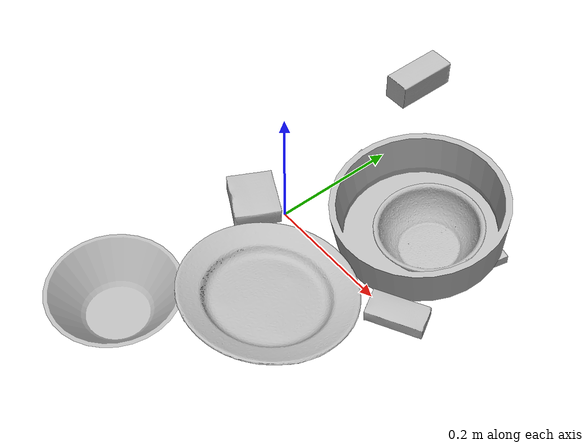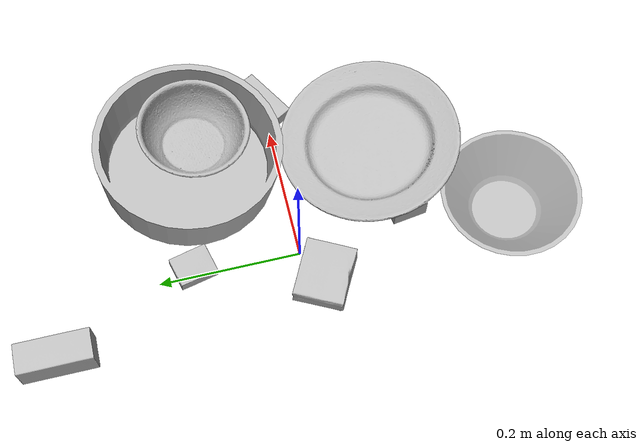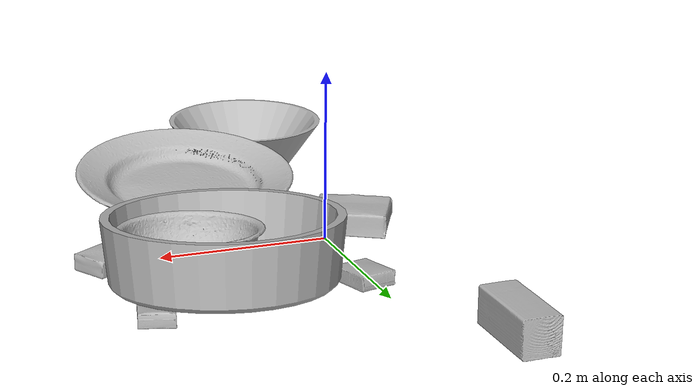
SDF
<sdf version="1.4">
  <world name="default">
    <light name="light1" type="point">
      <pose>0 0 1 0 0 0</pose>
      <diffuse>3 3 3 1</diffuse>
      <specular>3 3 3 1</specular>
    </light>
    <light name="light2" type="point">
      <pose>0 0.5 2 0 0 0</pose>
      <diffuse>1 1 1 1</diffuse>
      <specular>1 1 1 1</specular>
    </light>
    <light name="light3" type="point">
      <pose>0 0.5 2 0 0 0</pose>
      <diffuse>3 3 3 1</diffuse>
      <specular>3 3 3 1</specular>
    </light>
    <scene>
      <ambient>0.7 0.7 0.7</ambient>
    </scene>
    <model name="box1">
      <link name="link_box1">
        <collision name="default">
          <geometry>
            <mesh>
              <uri>model://jenga/collision_meshes/collision.obj</uri>
              <scale>1.0 1.0 1.0</scale>
            </mesh>
          </geometry>
          <surface>
            <friction>
              <ode>
                <mu>0.5</mu>
                <mu2>0.5</mu2>
              </ode>
            </friction>
          <contact>
        <ode>
            <max_vel>0</max_vel>
            <min_depth>0.0001</min_depth>
            <kp>1e8</kp>
        </ode>
    </contact></surface>
        </collision>
        <visual name="default">
          <geometry>
            <mesh>
              <uri>model://jenga/visual_meshes/visual.dae</uri>
              <scale>1.0 1.0 1.0</scale>
            </mesh>
          </geometry>
        </visual>
        <inertial>
          <mass>0.21843092143535614</mass>
          <pose>-2.502855807051674e-07 -0.00010250011109746993 -4.092339804628864e-05 0.0 -7.342154049184251e-07 0.0</pose>
          <inertia>
            <ixx>6.0445138e-05</ixx>
            <iyy>0.0004095746</iyy>
            <izz>0.00043725572</izz>
            <ixy>0</ixy>
            <ixz>0</ixz>
            <iyz>0</iyz>
          </inertia>
        </inertial>
      </link>
      <pose>0.09173869341611862 -0.15528805553913116 0.015000058338046074 7.238029517084074e-06 -5.20547038874497e-07 -2.993194590179922</pose>
    </model>
    <model name="box11">
      <link name="link_box11">
        <collision name="default">
          <geometry>
            <mesh>
              <uri>model://pudding_box/collision_meshes/collision.obj</uri>
              <scale>0.5 0.5 0.5</scale>
            </mesh>
          </geometry>
          <surface>
            <friction>
              <ode>
                <mu>0.5</mu>
                <mu2>0.5</mu2>
              </ode>
            </friction>
          <contact>
        <ode>
            <max_vel>0</max_vel>
            <min_depth>0.0001</min_depth>
            <kp>1e8</kp>
        </ode>
    </contact></surface>
        </collision>
        <visual name="default">
          <geometry>
            <mesh>
              <uri>model://pudding_box/visual_meshes/visual.dae</uri>
              <scale>0.5 0.5 0.5</scale>
            </mesh>
          </geometry>
        </visual>
        <inertial>
          <mass>0.04130476340651512</mass>
          <pose>0.00024474109522998333 0.00040339428232982755 -0.0002594413817860186 0.005213101341234124 -0.006603795469139562 0.020079830758209564</pose>
          <inertia>
            <ixx>1.1673226e-05</ixx>
            <iyy>7.85383e-06</iyy>
            <izz>1.723857e-05</izz>
            <ixy>0</ixy>
            <ixz>0</ixz>
            <iyz>0</iyz>
          </inertia>
        </inertial>
      </link>
      <pose>0.010555091314017773 0.14874719083309174 0.010024522431194782 0.038925397016447545 0.0016356724480770589 0.24808372217185104</pose>
    </model>
    <model name="box2">
      <link name="link_box2">
        <collision name="default">
          <geometry>
            <mesh>
              <uri>model://gelatin_box/collision_meshes/collision.obj</uri>
              <scale>1.0 1.0 1.0</scale>
            </mesh>
          </geometry>
          <surface>
            <friction>
              <ode>
                <mu>0.5</mu>
                <mu2>0.5</mu2>
              </ode>
            </friction>
          <contact>
        <ode>
            <max_vel>0</max_vel>
            <min_depth>0.0001</min_depth>
            <kp>1e8</kp>
        </ode>
    </contact></surface>
        </collision>
        <visual name="default">
          <geometry>
            <mesh>
              <uri>model://gelatin_box/visual_meshes/visual.dae</uri>
              <scale>1.0 1.0 1.0</scale>
            </mesh>
          </geometry>
        </visual>
        <inertial>
          <mass>0.24153950810432434</mass>
          <pose>0.0004319618456065655 0.00011156871914863586 -0.0003640321083366871 -0.001050371984258798 -0.004755819621622892 0.016440559472145032</pose>
          <inertia>
            <ixx>0.00017050719</ixx>
            <iyy>0.00012179239</iyy>
            <izz>0.0002595499</izz>
            <ixy>0</ixy>
            <ixz>0</ixz>
            <iyz>0</iyz>
          </inertia>
        </inertial>
      </link>
      <pose>-0.044366877526044846 -0.025486420840024948 0.015168310143053532 0.005597317561967432 -0.007304435181377776 -2.0619513504871216</pose>
    </model>
    <model name="box21">
      <link name="link_box21">
        <collision name="default">
          <geometry>
            <mesh>
              <uri>model://cracker_box/collision_meshes/collision.obj</uri>
              <scale>0.25 0.25 0.25</scale>
            </mesh>
          </geometry>
          <surface>
            <friction>
              <ode>
                <mu>0.5</mu>
                <mu2>0.5</mu2>
              </ode>
            </friction>
          <contact>
        <ode>
            <max_vel>0</max_vel>
            <min_depth>0.0001</min_depth>
            <kp>1e8</kp>
        </ode>
    </contact></surface>
        </collision>
        <visual name="default">
          <geometry>
            <mesh>
              <uri>model://cracker_box/visual_meshes/visual.dae</uri>
              <scale>0.25 0.25 0.25</scale>
            </mesh>
          </geometry>
        </visual>
        <inertial>
          <mass>0.04855586588382721</mass>
          <pose>0.00023660322767682374 6.358561222441494e-05 -0.00042573834070935845 -0.00031620783521113603 -0.01110649053142329 0.0025467954689779603</pose>
          <inertia>
            <ixx>7.719027e-06</ixx>
            <iyy>1.2745631e-05</iyy>
            <izz>1.8189185e-05</izz>
            <ixy>0</ixy>
            <ixz>0</ixz>
            <iyz>0</iyz>
          </inertia>
        </inertial>
      </link>
      <pose>0.2537783086299896 0.17563672363758087 0.009180080145597458 -0.005883490498149103 -0.01255919542104625 1.3164755729987756</pose>
    </model>
    <model name="box3">
      <link name="link_box3">
        <collision name="default">
          <geometry>
            <mesh>
              <uri>model://wood_block/collision_meshes/collision.obj</uri>
              <scale>0.5 0.5 0.5</scale>
            </mesh>
          </geometry>
          <surface>
            <friction>
              <ode>
                <mu>0.5</mu>
                <mu2>0.5</mu2>
              </ode>
            </friction>
          <contact>
        <ode>
            <max_vel>0</max_vel>
            <min_depth>0.0001</min_depth>
            <kp>1e8</kp>
        </ode>
    </contact></surface>
        </collision>
        <visual name="default">
          <geometry>
            <mesh>
              <uri>model://wood_block/visual_meshes/visual.dae</uri>
              <scale>0.5 0.5 0.5</scale>
            </mesh>
          </geometry>
        </visual>
        <inertial>
          <mass>0.17342756688594818</mass>
          <pose>-2.906657982748584e-06 -0.000285404734313488 0.00013204291462898254 -0.052208426481931185 -0.005192696107352816 -0.006861379630616638</pose>
          <inertia>
            <ixx>5.8018082e-05</ixx>
            <iyy>0.00018327912</iyy>
            <izz>0.00018259356</izz>
            <ixy>0</ixy>
            <ixz>0</ixz>
            <iyz>0</iyz>
          </inertia>
        </inertial>
      </link>
      <pose>-0.07782301306724548 0.34837085008621216 0.022629259154200554 -0.005208443627721148 0.005718772365716665 1.5742523547871372</pose>
    </model>
    <model name="box31">
      <link name="link_box31">
        <collision name="default">
          <geometry>
            <mesh>
              <uri>model://sugar_box/collision_meshes/collision.obj</uri>
              <scale>0.5 0.5 0.5</scale>
            </mesh>
          </geometry>
          <surface>
            <friction>
              <ode>
                <mu>0.5</mu>
                <mu2>0.5</mu2>
              </ode>
            </friction>
          <contact>
        <ode>
            <max_vel>0</max_vel>
            <min_depth>0.0001</min_depth>
            <kp>1e8</kp>
        </ode>
    </contact></surface>
        </collision>
        <visual name="default">
          <geometry>
            <mesh>
              <uri>model://sugar_box/visual_meshes/visual.dae</uri>
              <scale>0.5 0.5 0.5</scale>
            </mesh>
          </geometry>
        </visual>
        <inertial>
          <mass>0.102778859436512</mass>
          <pose>0.0005171863595023751 1.924554817378521e-05 -0.00018182402709499002 -0.00040462592244169 0.0010506634051582892 0.0026153783234817013</pose>
          <inertia>
            <ixx>2.1408765e-05</ixx>
            <iyy>6.919753e-05</iyy>
            <izz>8.2837694e-05</izz>
            <ixy>0</ixy>
            <ixz>0</ixz>
            <iyz>0</iyz>
          </inertia>
        </inertial>
      </link>
      <pose>0.25138917565345764 0.00292755663394928 0.011399305425584316 0.0007749846405834549 -0.023433076877818648 -2.6303566986047273</pose>
    </model>
    <model name="plate1">
      <link name="link_plate1">
        <collision name="default">
          <geometry>
            <mesh>
              <uri>model://pan_tefal/collision_meshes/collision.obj</uri>
              <scale>1.0 1.0 1.0</scale>
            </mesh>
          </geometry>
          <surface>
            <friction>
              <ode>
                <mu>0.5</mu>
                <mu2>0.5</mu2>
              </ode>
            </friction>
          <contact>
        <ode>
            <max_vel>0</max_vel>
            <min_depth>0.0001</min_depth>
            <kp>1e8</kp>
        </ode>
    </contact></surface>
        </collision>
        <visual name="default">
          <geometry>
            <mesh>
              <uri>model://pan_tefal/visual_meshes/visual.dae</uri>
              <scale>1.0 1.0 1.0</scale>
            </mesh>
          </geometry>
        </visual>
        <inertial>
          <mass>1.4199398756027222</mass>
          <pose>-0.00018002341676037759 3.278919029980898e-05 -0.00851493515074253 0.0008190238651519852 -0.0003301374854212985 -0.3318555266382279</pose>
          <inertia>
            <ixx>0.009801778</ixx>
            <iyy>0.009864969</iyy>
            <izz>0.01804318</izz>
            <ixy>0</ixy>
            <ixz>0</ixz>
            <iyz>0</iyz>
          </inertia>
        </inertial>
      </link>
      <pose>0.16311483085155487 0.12402484565973282 0.05031886696815491 -0.09849800658822203 -0.04146133669260391 2.533382411186584</pose>
    </model>
    <model name="bowl1">
      <link name="link_bowl1">
        <collision name="default">
          <geometry>
            <mesh>
              <uri>model://bowl/collision_meshes/collision.obj</uri>
              <scale>1.0 1.0 1.0</scale>
            </mesh>
          </geometry>
          <surface>
            <friction>
              <ode>
                <mu>0.5</mu>
                <mu2>0.5</mu2>
              </ode>
            </friction>
          <contact>
        <ode>
            <max_vel>0</max_vel>
            <min_depth>0.0001</min_depth>
            <kp>1e8</kp>
        </ode>
    </contact></surface>
        </collision>
        <visual name="default">
          <geometry>
            <mesh>
              <uri>model://bowl/visual_meshes/visual.dae</uri>
              <scale>1.0 1.0 1.0</scale>
            </mesh>
          </geometry>
        </visual>
        <inertial>
          <mass>0.10393582284450531</mass>
          <pose>0.00020445296831894666 -0.001030207728035748 -0.0008042644476518035 -0.01576405922653839 0.014546845721322095 0.7140430703653545</pose>
          <inertia>
            <ixx>0.00023874876</ixx>
            <iyy>0.00023341418</iyy>
            <izz>0.00040165734</izz>
            <ixy>0</ixy>
            <ixz>0</ixz>
            <iyz>0</iyz>
          </inertia>
        </inertial>
      </link>
      <pose>0.19635449349880219 0.1113930344581604 0.04705251380801201 0.1068056140710976 -0.0238709052671254 -0.013443448309687306</pose>
    </model>
    <model name="plate2">
      <link name="link_plate2">
        <collision name="default">
          <geometry>
            <mesh>
              <uri>model://plate/collision_meshes/collision.obj</uri>
              <scale>1.0 1.0 1.0</scale>
            </mesh>
          </geometry>
          <surface>
            <friction>
              <ode>
                <mu>0.5</mu>
                <mu2>0.5</mu2>
              </ode>
            </friction>
          <contact>
        <ode>
            <max_vel>0</max_vel>
            <min_depth>0.0001</min_depth>
            <kp>1e8</kp>
        </ode>
    </contact></surface>
        </collision>
        <visual name="default">
          <geometry>
            <mesh>
              <uri>model://plate/visual_meshes/visual.dae</uri>
              <scale>1.0 1.0 1.0</scale>
            </mesh>
          </geometry>
        </visual>
        <inertial>
          <mass>0.11643410474061966</mass>
          <pose>-0.0006044629844836891 0.000278257648460567 -0.001056199660524726 0.0022187586917557377 -0.0032254970862864826 0.45261837235677477</pose>
          <inertia>
            <ixx>0.00054468104</ixx>
            <iyy>0.0005394714</iyy>
            <izz>0.0010653147</izz>
            <ixy>0</ixy>
            <ixz>0</ixz>
            <iyz>0</iyz>
          </inertia>
        </inertial>
      </link>
      <pose>0.1298917680978775 -0.1344185173511505 0.04411263391375542 0.0556022205608118 0.10974684195237663 2.0757918466815988</pose>
    </model>
    <model name="bowl2">
      <link name="link_bowl2">
        <collision name="default">
          <geometry>
            <mesh>
              <uri>model://bowl_a/collision_meshes/collision.obj</uri>
              <scale>1.0 1.0 1.0</scale>
            </mesh>
          </geometry>
          <surface>
            <friction>
              <ode>
                <mu>0.5</mu>
                <mu2>0.5</mu2>
              </ode>
            </friction>
          <contact>
        <ode>
            <max_vel>0</max_vel>
            <min_depth>0.0001</min_depth>
            <kp>1e8</kp>
        </ode>
    </contact></surface>
        </collision>
        <visual name="default">
          <geometry>
            <mesh>
              <uri>model://bowl_a/visual_meshes/visual.dae</uri>
              <scale>1.0 1.0 1.0</scale>
            </mesh>
          </geometry>
        </visual>
        <inertial>
          <mass>0.4875580668449402</mass>
          <pose>0.00027867365861311555 4.73092841275502e-05 -0.0013765289913862944 -0.0009805446644095745 -0.0010938154105800495 -0.1912289991244328</pose>
          <inertia>
            <ixx>0.0013881001</ixx>
            <iyy>0.0013966226</iyy>
            <izz>0.0024687892</izz>
            <ixy>0</ixy>
            <ixz>0</ixz>
            <iyz>0</iyz>
          </inertia>
        </inertial>
      </link>
      <pose>-0.0018794588977470994 -0.3015497326850891 0.030383015051484108 -2.0673589304913896e-07 3.7314848811577627e-07 -1.569495944367982</pose>
    </model>
  <physics type="ode">
      <max_contacts>50</max_contacts>
      <ode>
        <solver>
          <type>quick</type>
          <iters>75</iters>
        </solver>
        <constraints>
          <contact_max_correcting_vel>0</contact_max_correcting_vel>
          <contact_surface_layer>0</contact_surface_layer>
        </constraints>
      </ode>
    </physics></world>
</sdf>
